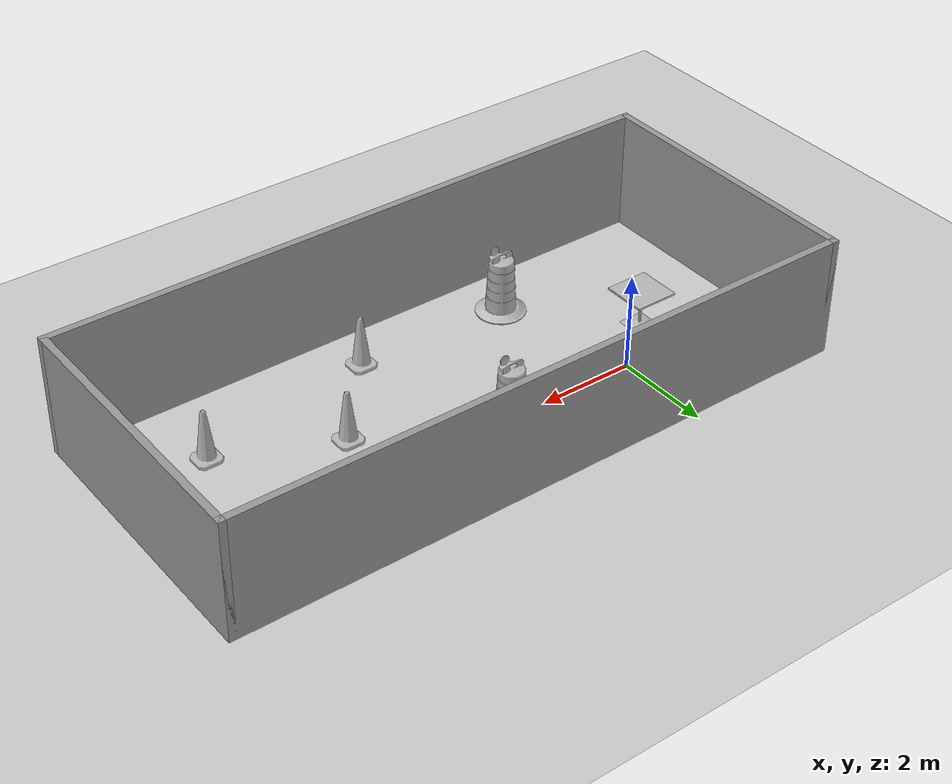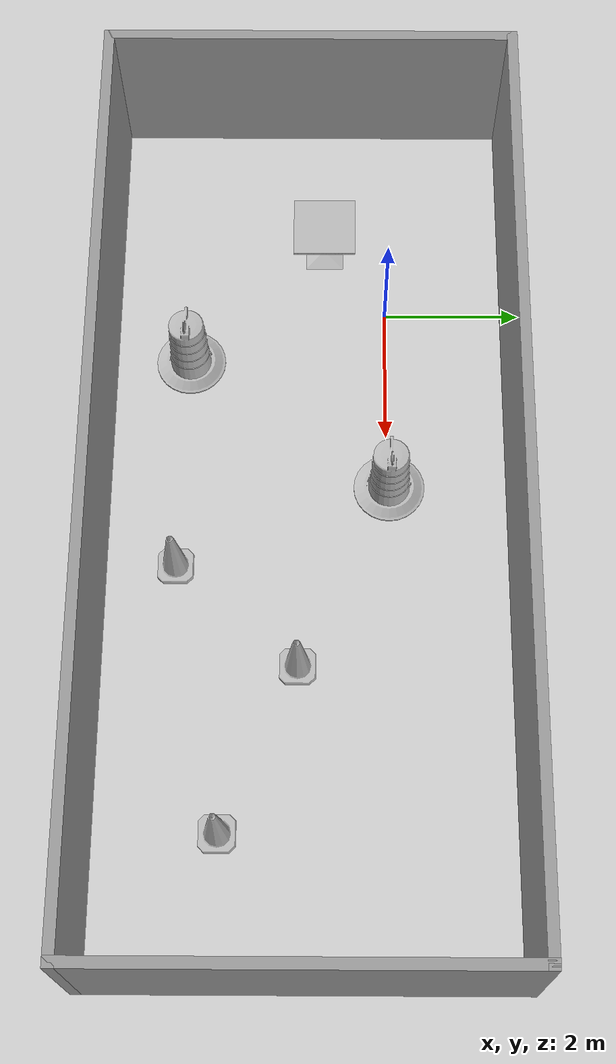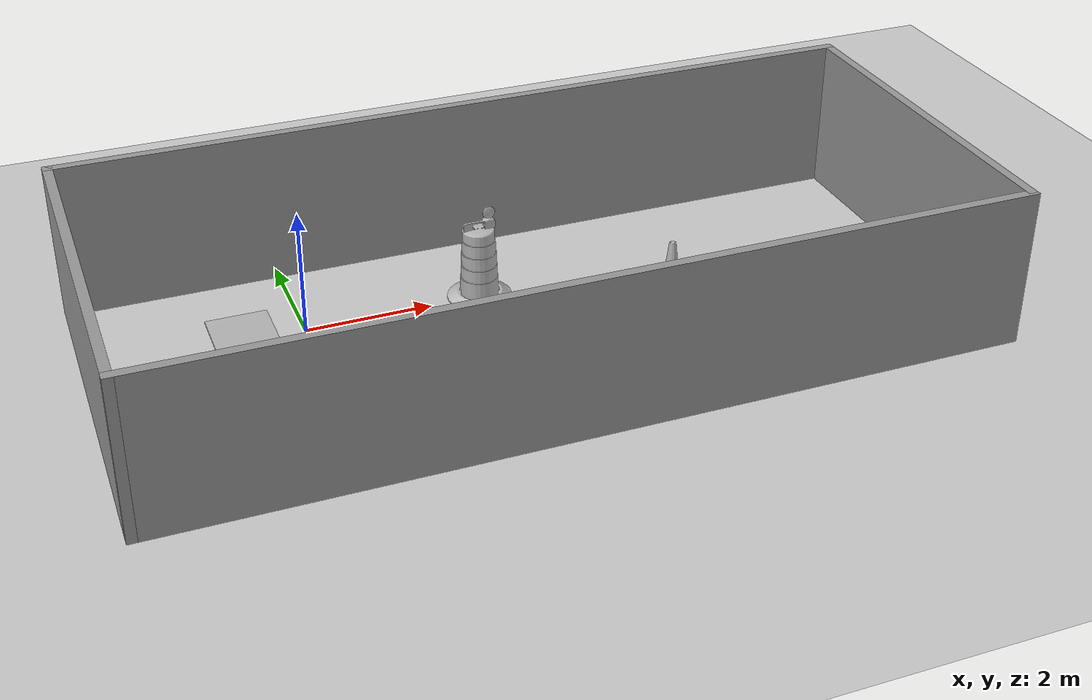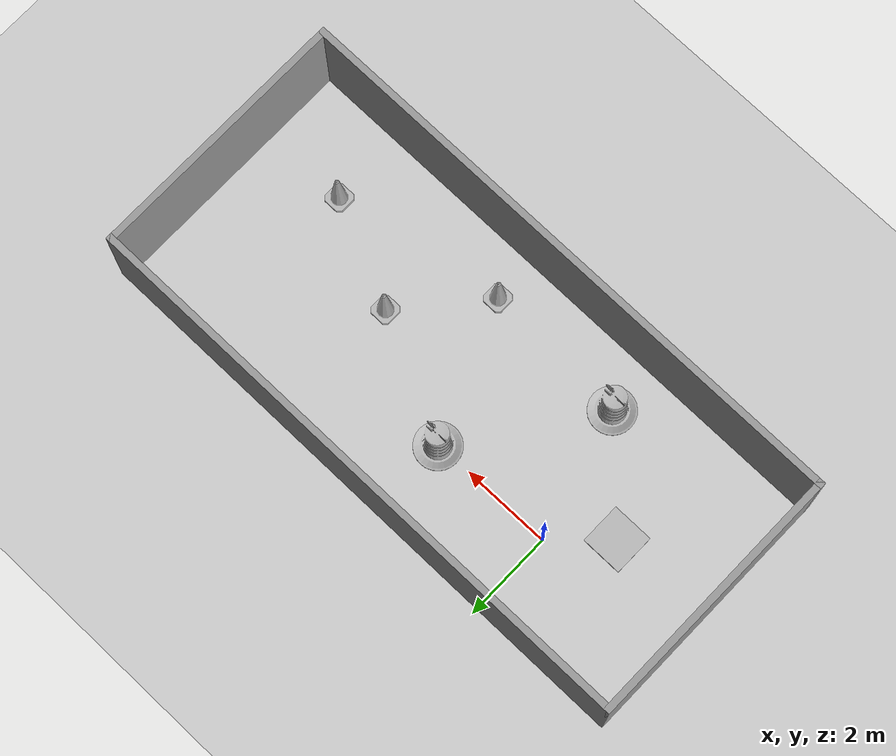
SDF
<sdf version="1.7">
 <world name="default">
  <light name="sun" type="directional">
   <pose>0 0 10 0 -0 0</pose>
   <diffuse>0.8 0.8 0.8 1</diffuse>
   <specular>0.2 0.2 0.2 1</specular>
   <attenuation>
    <range>1000</range>
    <constant>0.9</constant>
    <linear>0.01</linear>
    <quadratic>0.001</quadratic>
   </attenuation>
   <direction>-0.5 0.1 -0.9</direction>
   <spot><inner_angle>0</inner_angle><outer_angle>0</outer_angle><falloff>0</falloff></spot>
  </light>
  <model name="ground_plane">
   <static>1</static>
   <link name="link">
    <collision name="collision">
     <geometry><plane><normal>0 0 1</normal><size>100 100</size></plane></geometry>
     <surface><friction><ode><mu>100</mu><mu2>50</mu2></ode></friction></surface>
    </collision>
    <visual name="visual">
     <cast_shadows>0</cast_shadows>
     <geometry><plane><normal>0 0 1</normal><size>100 100</size></plane></geometry>
     <material>
      <script><uri>file://media/materials/scripts/gazebo.material</uri><name>Gazebo/Grey</name></script>
     </material>
    </visual>
   </link>
  </model>
  <gravity>0 0 -9.8</gravity>
  <magnetic_field>6e-06 2.3e-05 -4.2e-05</magnetic_field>
  <atmosphere type="adiabatic"/>
  <physics type="ode">
   <max_step_size>0.001</max_step_size>
   <real_time_factor>1</real_time_factor>
   <real_time_update_rate>1000</real_time_update_rate>
  </physics>
  <scene><ambient>0.4 0.4 0.4 1</ambient><background>0.7 0.7 0.7 1</background><shadows>1</shadows></scene>
  <audio><device>default</device></audio>
  <spherical_coordinates>
   <surface_model>EARTH_WGS84</surface_model>
   <latitude_deg>0</latitude_deg>
   <longitude_deg>0</longitude_deg>
   <elevation>0</elevation>
   <heading_deg>0</heading_deg>
  </spherical_coordinates>
  <model name="big_arena">
   <pose>3.27052 -1.1199 0 0 -0 0</pose>
   <link name="Wall_10">
    <collision name="Wall_10_Collision">
     <geometry><box><size>13.25 0.15 2.5</size></box></geometry>
     <pose>0 0 1.25 0 -0 0</pose>
    </collision>
    <visual name="Wall_10_Visual">
     <pose>0 0 1.25 0 -0 0</pose>
     <geometry><box><size>13.25 0.15 2.5</size></box></geometry>
     <material>
      <script><uri>file://media/materials/scripts/gazebo.material</uri><name>Gazebo/Grey</name></script>
      <ambient>1 1 1 1</ambient>
     </material>
     <meta><layer>0</layer></meta>
    </visual>
    <pose>-0 2.925 0 0 -0 0</pose>
   </link>
   <link name="Wall_11">
    <collision name="Wall_11_Collision">
     <geometry><box><size>6 0.15 2.5</size></box></geometry>
     <pose>0 0 1.25 0 -0 0</pose>
    </collision>
    <visual name="Wall_11_Visual">
     <pose>0 0 1.25 0 -0 0</pose>
     <geometry><box><size>6 0.15 2.5</size></box></geometry>
     <material>
      <script><uri>file://media/materials/scripts/gazebo.material</uri><name>Gazebo/Grey</name></script>
      <ambient>1 1 1 1</ambient>
     </material>
     <meta><layer>0</layer></meta>
    </visual>
    <pose>6.55 0 0 0 -0 -1.5708</pose>
   </link>
   <link name="Wall_12">
    <collision name="Wall_12_Collision">
     <geometry><box><size>13.25 0.15 2.5</size></box></geometry>
     <pose>0 0 1.25 0 -0 0</pose>
    </collision>
    <visual name="Wall_12_Visual">
     <pose>0 0 1.25 0 -0 0</pose>
     <geometry><box><size>13.25 0.15 2.5</size></box></geometry>
     <material>
      <script><uri>file://media/materials/scripts/gazebo.material</uri><name>Gazebo/Grey</name></script>
      <ambient>1 1 1 1</ambient>
     </material>
     <meta><layer>0</layer></meta>
    </visual>
    <pose>-0 -2.925 0 0 -0 3.14159</pose>
   </link>
   <link name="Wall_9">
    <collision name="Wall_9_Collision">
     <geometry><box><size>6 0.15 2.5</size></box></geometry>
     <pose>0 0 1.25 0 -0 0</pose>
    </collision>
    <visual name="Wall_9_Visual">
     <pose>0 0 1.25 0 -0 0</pose>
     <geometry><box><size>6 0.15 2.5</size></box></geometry>
     <material>
      <script><uri>file://media/materials/scripts/gazebo.material</uri><name>Gazebo/Grey</name></script>
      <ambient>1 1 1 1</ambient>
     </material>
     <meta><layer>0</layer></meta>
    </visual>
    <pose>-6.55 0 0 0 -0 1.5708</pose>
   </link>
   <static>1</static>
  </model>
  <model name="cafe_table">
   <static>1</static>
   <link name="link">
    <collision name="surface">
     <pose>0 0 0.755 0 -0 0</pose>
     <geometry><box><size>0.913 0.913 0.04</size></box></geometry>
    </collision>
    <collision name="column">
     <pose>0 0 0.37 0 -0 0</pose>
     <geometry><box><size>0.042 0.042 0.74</size></box></geometry>
    </collision>
    <collision name="base">
     <pose>0 0 0.02 0 -0 0</pose>
     <geometry><box><size>0.56 0.56 0.04</size></box></geometry>
    </collision>
    <visual name="visual">
     <geometry><mesh><uri>model://cafe_table/meshes/cafe_table.dae</uri></mesh></geometry>
    </visual>
   </link>
   <pose>-1.10699 -0.909326 0 0 -0 0</pose>
  </model>
  <model name="Construction Barrel">
   <link name="link">
    <inertial>
     <pose>0 0 0.4 0 -0 0</pose>
     <mass>500</mass>
     <inertia><ixx>51.2096</ixx><iyy>51.2096</iyy><izz>25</izz><ixy>0</ixy><ixz>0</ixz><iyz>0</iyz></inertia>
    </inertial>
    <collision name="collision">
     <geometry><mesh><uri>model://construction_barrel/meshes/construction_barrel.dae</uri></mesh></geometry>
    </collision>
    <visual name="visual">
     <geometry><mesh><uri>model://construction_barrel/meshes/construction_barrel.dae</uri></mesh></geometry>
    </visual>
   </link>
   <pose>0.79334 -2.88075 -0 0 0 -2.2e-05</pose>
  </model>
  <model name="Construction Barrel_0">
   <link name="link">
    <inertial>
     <pose>0 0 0.4 0 -0 0</pose>
     <mass>500</mass>
     <inertia><ixx>51.2096</ixx><iyy>51.2096</iyy><izz>25</izz><ixy>0</ixy><ixz>0</ixz><iyz>0</iyz></inertia>
    </inertial>
    <collision name="collision">
     <geometry><mesh><uri>model://construction_barrel/meshes/construction_barrel.dae</uri></mesh></geometry>
    </collision>
    <visual name="visual">
     <geometry><mesh><uri>model://construction_barrel/meshes/construction_barrel.dae</uri></mesh></geometry>
    </visual>
   </link>
   <pose>2.81147 0.041512 0 0 0 -2.6e-05</pose>
  </model>
  <model name="Construction Cone">
   <link name="link">
    <collision name="collision">
     <geometry>
      <mesh><scale>10 10 10</scale><uri>model://construction_cone/meshes/construction_cone.dae</uri></mesh>
     </geometry>
    </collision>
    <visual name="visual">
     <geometry>
      <mesh><scale>10 10 10</scale><uri>model://construction_cone/meshes/construction_cone.dae</uri></mesh>
     </geometry>
    </visual>
    <inertial>
     <inertia><ixx>1</ixx><ixy>0</ixy><ixz>0</ixz><iyy>1</iyy><iyz>0</iyz><izz>1</izz></inertia>
     <mass>1</mass>
    </inertial>
   </link>
   <pose>4.03798 -2.98719 -0 0 -0 0</pose>
  </model>
  <model name="Construction Cone_clone">
   <link name="link">
    <collision name="collision">
     <geometry>
      <mesh><scale>10 10 10</scale><uri>model://construction_cone/meshes/construction_cone.dae</uri></mesh>
     </geometry>
    </collision>
    <visual name="visual">
     <geometry>
      <mesh><scale>10 10 10</scale><uri>model://construction_cone/meshes/construction_cone.dae</uri></mesh>
     </geometry>
    </visual>
    <inertial>
     <inertia><ixx>1</ixx><ixy>0</ixy><ixz>0</ixz><iyy>1</iyy><iyz>0</iyz><izz>1</izz></inertia>
     <mass>1</mass>
    </inertial>
   </link>
   <pose>5.50964 -1.24659 -0 0 -1e-06 0</pose>
  </model>
  <model name="Construction Cone_clone_0">
   <link name="link">
    <collision name="collision">
     <geometry>
      <mesh><scale>10 10 10</scale><uri>model://construction_cone/meshes/construction_cone.dae</uri></mesh>
     </geometry>
    </collision>
    <visual name="visual">
     <geometry>
      <mesh><scale>10 10 10</scale><uri>model://construction_cone/meshes/construction_cone.dae</uri></mesh>
     </geometry>
    </visual>
    <inertial>
     <inertia><ixx>1</ixx><ixy>0</ixy><ixz>0</ixz><iyy>1</iyy><iyz>0</iyz><izz>1</izz></inertia>
     <mass>1</mass>
    </inertial>
   </link>
   <pose>7.82982 -2.29289 -4e-06 4e-06 -1e-06 0</pose>
  </model>
 </world>
</sdf>
